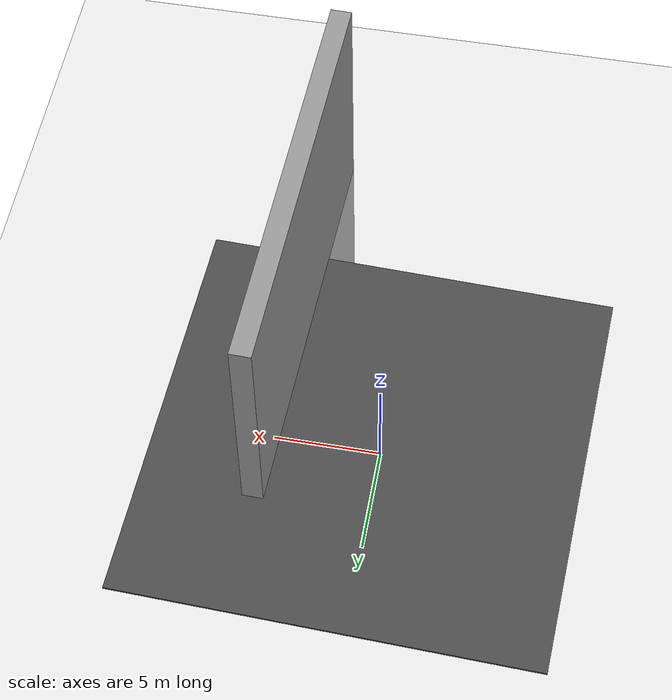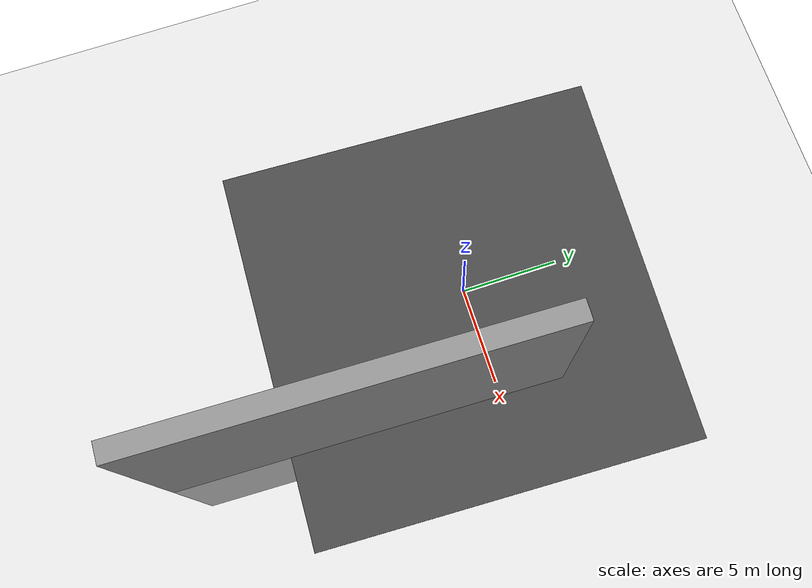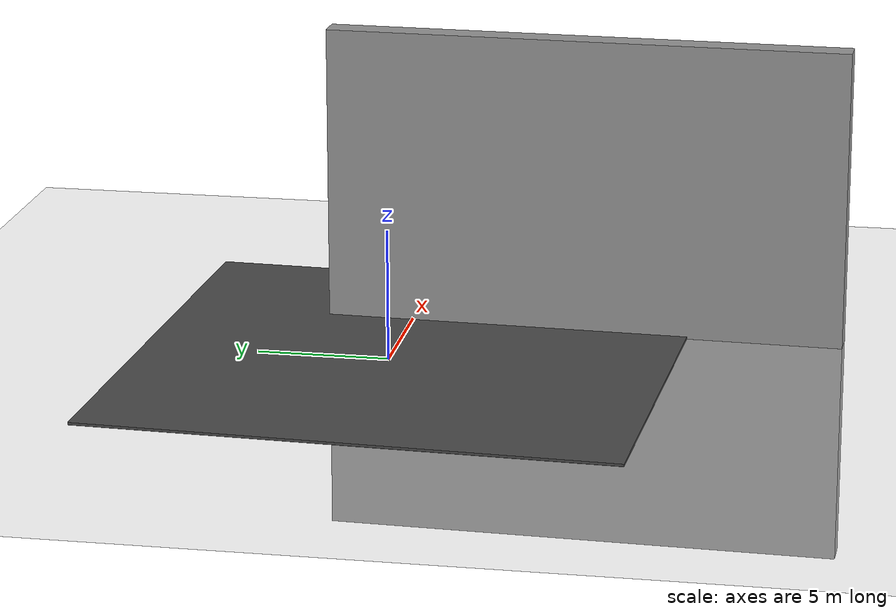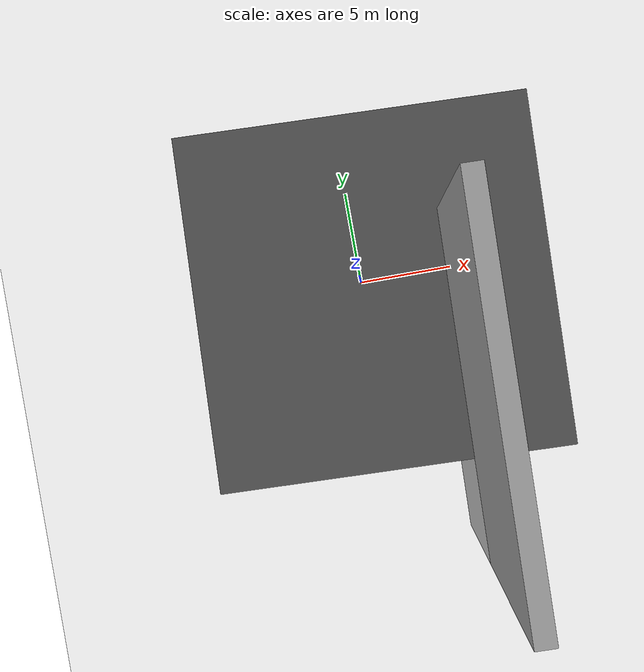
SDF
<sdf version="1.6">
 <world name="default">
  <light name="sun" type="directional">
   <pose>0 0 10 0 -0 0</pose>
   <diffuse>0.8 0.8 0.8 1</diffuse>
   <specular>0.1 0.1 0.1 1</specular>
   <attenuation>
    <range>1000</range>
    <constant>0.9</constant>
    <linear>0.01</linear>
    <quadratic>0.001</quadratic>
   </attenuation>
   <direction>-0.5 0.5 -1</direction>
  </light>
  <model name="ground_plane">
   <static>1</static>
   <link name="link">
    <collision name="collision">
     <geometry><plane><normal>0 0 1</normal><size>100 100</size></plane></geometry>
     <surface><friction><ode><mu>100</mu><mu2>50</mu2></ode></friction></surface>
    </collision>
    <visual name="visual">
     <cast_shadows>0</cast_shadows>
     <geometry><plane><normal>0 0 1</normal><size>100 100</size></plane></geometry>
     <material>
      <script><uri>file://media/materials/scripts/gazebo.material</uri><name>Gazebo/Grey</name></script>
     </material>
    </visual>
   </link>
  </model>
  <model name="asphalt_plane">
   <pose>0.602861 -0.585255 0 0 0 -0.039388</pose>
   <static>1</static>
   <link name="link">
    <collision name="collision"><geometry><box><size>20 20 0.1</size></box></geometry></collision>
    <visual name="visual">
     <cast_shadows>0</cast_shadows>
     <geometry><box><size>20 20 0.1</size></box></geometry>
     <material>
      <script>
       <uri>model://asphalt_plane/materials/scripts</uri>
       <uri>model://asphalt_plane/materials/textures</uri>
       <name>vrc/asphalt</name>
      </script>
     </material>
    </visual>
   </link>
  </model>
  <physics name="default_physics" default="0" type="ode">
   <ode>
    <solver>
     <type>quick</type>
     <iters>10</iters>
     <sor>1.3</sor>
     <use_dynamic_moi_rescaling>0</use_dynamic_moi_rescaling>
    </solver>
    <constraints>
     <cfm>0</cfm>
     <erp>0.2</erp>
     <contact_max_correcting_vel>100</contact_max_correcting_vel>
     <contact_surface_layer>0.001</contact_surface_layer>
    </constraints>
   </ode>
   <max_step_size>0.002</max_step_size>
   <real_time_factor>1</real_time_factor>
   <real_time_update_rate>500</real_time_update_rate>
  </physics>
  <gravity>0 0 -9.8066</gravity>
  <magnetic_field>6e-06 2.3e-05 -4.2e-05</magnetic_field>
  <atmosphere type="adiabatic"/>
  <scene><ambient>0.4 0.4 0.4 1</ambient><background>0.7 0.7 0.7 1</background><shadows>1</shadows></scene>
  <spherical_coordinates>
   <surface_model>EARTH_WGS84</surface_model>
   <latitude_deg>0</latitude_deg>
   <longitude_deg>0</longitude_deg>
   <elevation>0</elevation>
   <heading_deg>0</heading_deg>
  </spherical_coordinates>
  <model name="grey_wall">
   <static>1</static>
   <link name="link">
    <pose>0 0 1.4 0 -0 0</pose>
    <collision name="collision"><geometry><box><size>20 1 20</size></box></geometry></collision>
    <visual name="visual">
     <cast_shadows>0</cast_shadows>
     <geometry><box><size>20 1 20</size></box></geometry>
     <material>
      <script>
       <uri>model://grey_wall/materials/scripts</uri>
       <uri>model://grey_wall/materials/textures</uri>
       <name>vrc/grey_wall</name>
      </script>
     </material>
    </visual>
   </link>
   <pose>5.061 -6.69051 0 0 0 -1.6015</pose>
  </model>
 </world>
</sdf>
